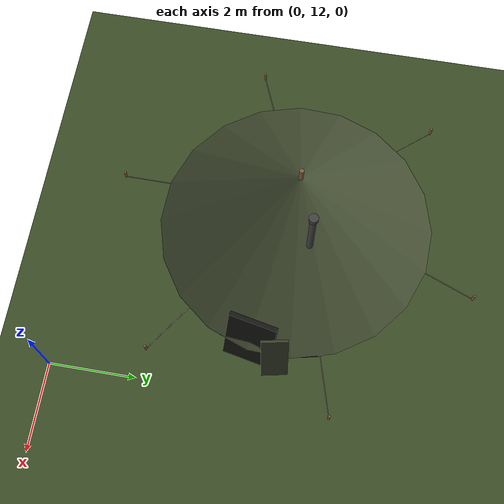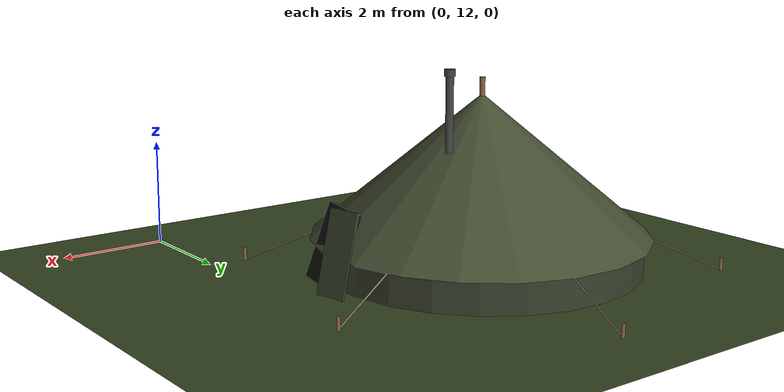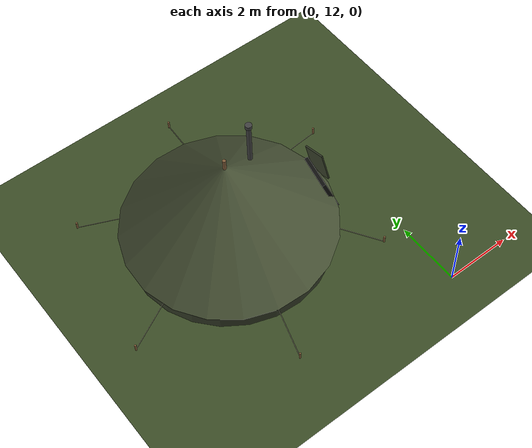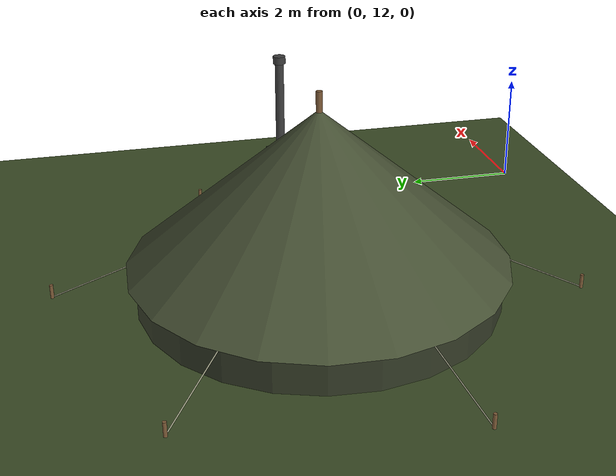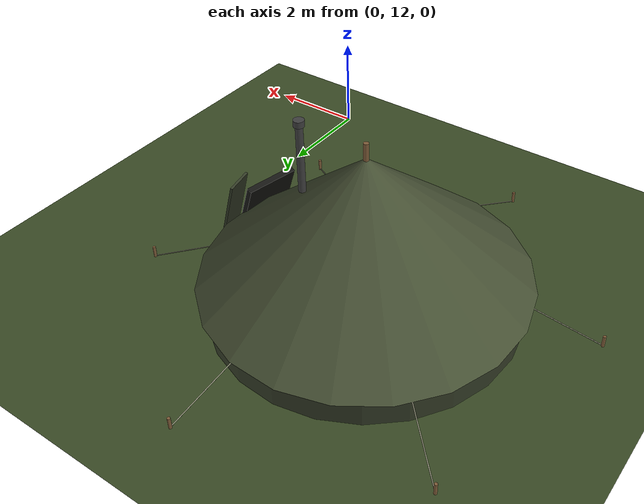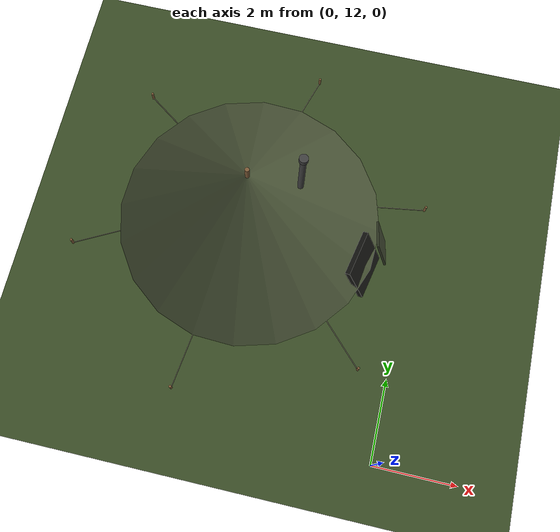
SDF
<sdf version="1.11">
 <world name="hive_base">
  <model name="ground_plane">
   <static>true</static>
   <link name="link">
    <collision name="collision">
     <geometry><plane><normal>0 0 1</normal><size>1000 1000</size></plane></geometry>
     <surface><friction><ode><mu>1.0</mu><mu2>1.0</mu2></ode></friction></surface>
    </collision>
    <visual name="visual">
     <geometry><plane><normal>0 0 1</normal><size>1000 1000</size></plane></geometry>
     <material>
      <ambient>0.23 0.3 0.15 1</ambient>
      <diffuse>0.23 0.3 0.15 1</diffuse>
      <specular>0.05 0.05 0.05 1</specular>
     </material>
    </visual>
   </link>
  </model>
  <model name="tent_2">
   <static>true</static>
   <pose>-4 17 0 0 0 -0.2</pose>
   <link name="link">
    <visual name="v1">
     <pose>0 0 0.3 0 0 0</pose>
     <geometry><cylinder><radius>3</radius><length>0.6</length></cylinder></geometry>
     <material>
      <ambient>0.2 0.23 0.15 1</ambient>
      <diffuse>0.2 0.23 0.15 1</diffuse>
      <specular>0.05 0.05 0.05 1</specular>
     </material>
    </visual>
    <collision name="c1">
     <pose>0 0 0.3 0 0 0</pose>
     <geometry><cylinder><radius>3</radius><length>0.6</length></cylinder></geometry>
    </collision>
    <visual name="v2">
     <pose>0 0 1.9 0 0 0</pose>
     <geometry><cone><radius>3.15</radius><length>2.6</length></cone></geometry>
     <material>
      <ambient>0.27 0.31 0.2 1</ambient>
      <diffuse>0.27 0.31 0.2 1</diffuse>
      <specular>0.05 0.05 0.05 1</specular>
     </material>
    </visual>
    <collision name="c2">
     <pose>0 0 1.9 0 0 0</pose>
     <geometry><cylinder><radius>1.89</radius><length>2.6</length></cylinder></geometry>
    </collision>
    <visual name="v3">
     <pose>0 0 3.3 0 0 0</pose>
     <geometry><cylinder><radius>0.05</radius><length>0.4</length></cylinder></geometry>
     <material>
      <ambient>0.5 0.36 0.22 1</ambient>
      <diffuse>0.5 0.36 0.22 1</diffuse>
      <specular>0.05 0.05 0.05 1</specular>
     </material>
    </visual>
    <visual name="v4">
     <pose>1 0.6 3 0 0 0</pose>
     <geometry><cylinder><radius>0.07</radius><length>1.4</length></cylinder></geometry>
     <material>
      <ambient>0.25 0.25 0.25 1</ambient>
      <diffuse>0.25 0.25 0.25 1</diffuse>
      <specular>0.05 0.05 0.05 1</specular>
     </material>
    </visual>
    <visual name="v5">
     <pose>1 0.6 3.7 0 0 0</pose>
     <geometry><cylinder><radius>0.1</radius><length>0.12</length></cylinder></geometry>
     <material>
      <ambient>0.25 0.25 0.25 1</ambient>
      <diffuse>0.25 0.25 0.25 1</diffuse>
      <specular>0.05 0.05 0.05 1</specular>
     </material>
    </visual>
    <visual name="v6">
     <pose>2.95 0 0.7 0 -0.35 0</pose>
     <geometry><box><size>0.12 1.1 1.4</size></box></geometry>
     <material>
      <ambient>0.08 0.08 0.07 1</ambient>
      <diffuse>0.08 0.08 0.07 1</diffuse>
      <specular>0.05 0.05 0.05 1</specular>
     </material>
    </visual>
    <visual name="v7">
     <pose>3.15 0.65 0.75 0 -0.25 0.4</pose>
     <geometry><box><size>0.05 0.6 1.5</size></box></geometry>
     <material>
      <ambient>0.2 0.23 0.15 1</ambient>
      <diffuse>0.2 0.23 0.15 1</diffuse>
      <specular>0.05 0.05 0.05 1</specular>
     </material>
    </visual>
    <visual name="v8">
     <pose>3.204 1.85 0.3 0 1.166 3.665</pose>
     <geometry><cylinder><radius>0.01</radius><length>1.523</length></cylinder></geometry>
     <material>
      <ambient>0.6 0.6 0.5 1</ambient>
      <diffuse>0.6 0.6 0.5 1</diffuse>
      <specular>0.05 0.05 0.05 1</specular>
     </material>
     <cast_shadows>false</cast_shadows>
    </visual>
    <visual name="v9">
     <pose>3.811 2.2 0.1 0 0 0</pose>
     <geometry><cylinder><radius>0.03</radius><length>0.25</length></cylinder></geometry>
     <material>
      <ambient>0.5 0.36 0.22 1</ambient>
      <diffuse>0.5 0.36 0.22 1</diffuse>
      <specular>0.05 0.05 0.05 1</specular>
     </material>
     <cast_shadows>false</cast_shadows>
    </visual>
    <visual name="v10">
     <pose>0 3.7 0.3 0 1.166 4.712</pose>
     <geometry><cylinder><radius>0.01</radius><length>1.523</length></cylinder></geometry>
     <material>
      <ambient>0.6 0.6 0.5 1</ambient>
      <diffuse>0.6 0.6 0.5 1</diffuse>
      <specular>0.05 0.05 0.05 1</specular>
     </material>
     <cast_shadows>false</cast_shadows>
    </visual>
    <visual name="v11">
     <pose>0 4.4 0.1 0 0 0</pose>
     <geometry><cylinder><radius>0.03</radius><length>0.25</length></cylinder></geometry>
     <material>
      <ambient>0.5 0.36 0.22 1</ambient>
      <diffuse>0.5 0.36 0.22 1</diffuse>
      <specular>0.05 0.05 0.05 1</specular>
     </material>
     <cast_shadows>false</cast_shadows>
    </visual>
    <visual name="v12">
     <pose>-3.204 1.85 0.3 0 1.166 5.76</pose>
     <geometry><cylinder><radius>0.01</radius><length>1.523</length></cylinder></geometry>
     <material>
      <ambient>0.6 0.6 0.5 1</ambient>
      <diffuse>0.6 0.6 0.5 1</diffuse>
      <specular>0.05 0.05 0.05 1</specular>
     </material>
     <cast_shadows>false</cast_shadows>
    </visual>
    <visual name="v13">
     <pose>-3.811 2.2 0.1 0 0 0</pose>
     <geometry><cylinder><radius>0.03</radius><length>0.25</length></cylinder></geometry>
     <material>
      <ambient>0.5 0.36 0.22 1</ambient>
      <diffuse>0.5 0.36 0.22 1</diffuse>
      <specular>0.05 0.05 0.05 1</specular>
     </material>
     <cast_shadows>false</cast_shadows>
    </visual>
    <visual name="v14">
     <pose>-3.204 -1.85 0.3 0 1.166 6.807</pose>
     <geometry><cylinder><radius>0.01</radius><length>1.523</length></cylinder></geometry>
     <material>
      <ambient>0.6 0.6 0.5 1</ambient>
      <diffuse>0.6 0.6 0.5 1</diffuse>
      <specular>0.05 0.05 0.05 1</specular>
     </material>
     <cast_shadows>false</cast_shadows>
    </visual>
    <visual name="v15">
     <pose>-3.811 -2.2 0.1 0 0 0</pose>
     <geometry><cylinder><radius>0.03</radius><length>0.25</length></cylinder></geometry>
     <material>
      <ambient>0.5 0.36 0.22 1</ambient>
      <diffuse>0.5 0.36 0.22 1</diffuse>
      <specular>0.05 0.05 0.05 1</specular>
     </material>
     <cast_shadows>false</cast_shadows>
    </visual>
    <visual name="v16">
     <pose>-0 -3.7 0.3 0 1.166 7.854</pose>
     <geometry><cylinder><radius>0.01</radius><length>1.523</length></cylinder></geometry>
     <material>
      <ambient>0.6 0.6 0.5 1</ambient>
      <diffuse>0.6 0.6 0.5 1</diffuse>
      <specular>0.05 0.05 0.05 1</specular>
     </material>
     <cast_shadows>false</cast_shadows>
    </visual>
    <visual name="v17">
     <pose>-0 -4.4 0.1 0 0 0</pose>
     <geometry><cylinder><radius>0.03</radius><length>0.25</length></cylinder></geometry>
     <material>
      <ambient>0.5 0.36 0.22 1</ambient>
      <diffuse>0.5 0.36 0.22 1</diffuse>
      <specular>0.05 0.05 0.05 1</specular>
     </material>
     <cast_shadows>false</cast_shadows>
    </visual>
    <visual name="v18">
     <pose>3.204 -1.85 0.3 0 1.166 8.901</pose>
     <geometry><cylinder><radius>0.01</radius><length>1.523</length></cylinder></geometry>
     <material>
      <ambient>0.6 0.6 0.5 1</ambient>
      <diffuse>0.6 0.6 0.5 1</diffuse>
      <specular>0.05 0.05 0.05 1</specular>
     </material>
     <cast_shadows>false</cast_shadows>
    </visual>
    <visual name="v19">
     <pose>3.811 -2.2 0.1 0 0 0</pose>
     <geometry><cylinder><radius>0.03</radius><length>0.25</length></cylinder></geometry>
     <material>
      <ambient>0.5 0.36 0.22 1</ambient>
      <diffuse>0.5 0.36 0.22 1</diffuse>
      <specular>0.05 0.05 0.05 1</specular>
     </material>
     <cast_shadows>false</cast_shadows>
    </visual>
   </link>
  </model>
 </world>
</sdf>
